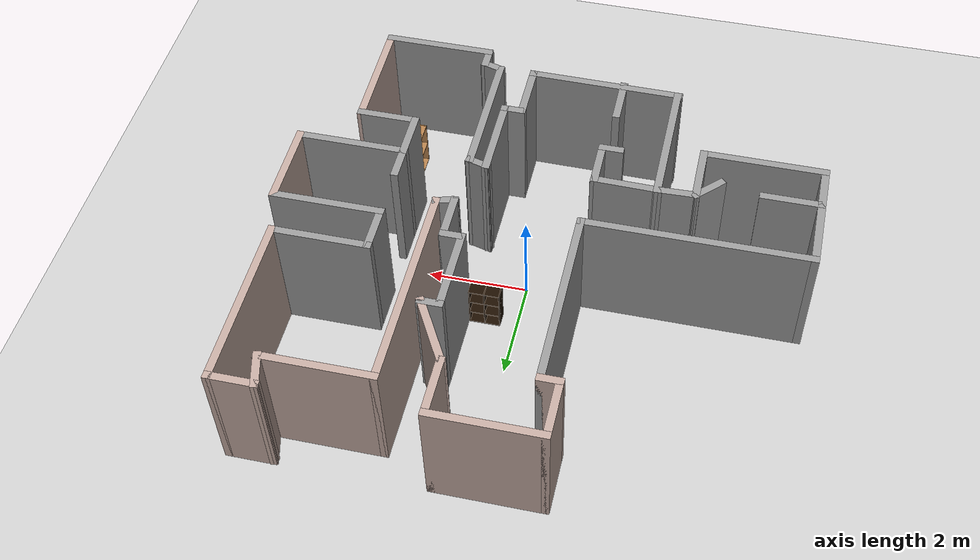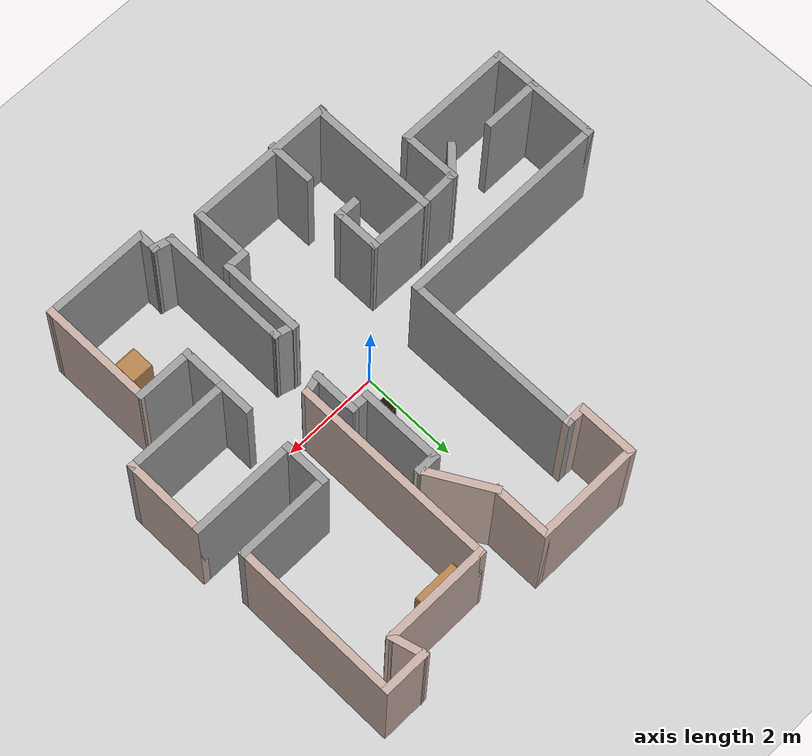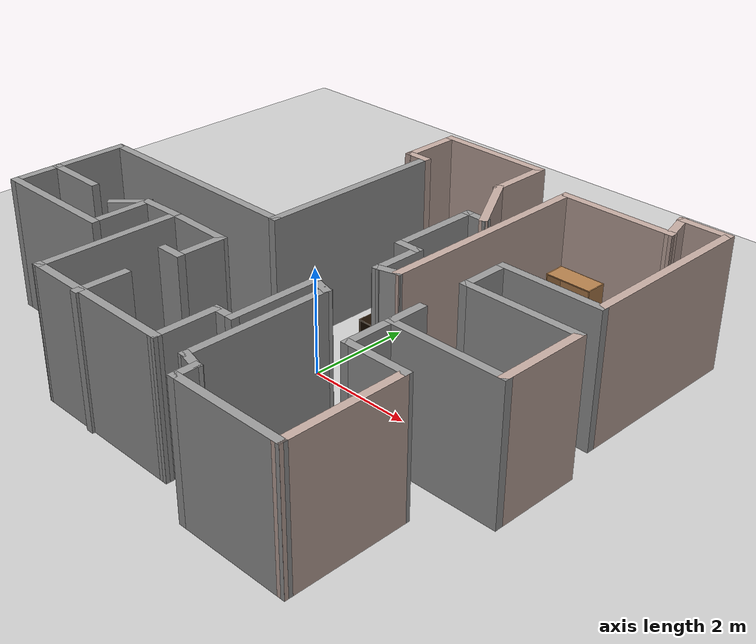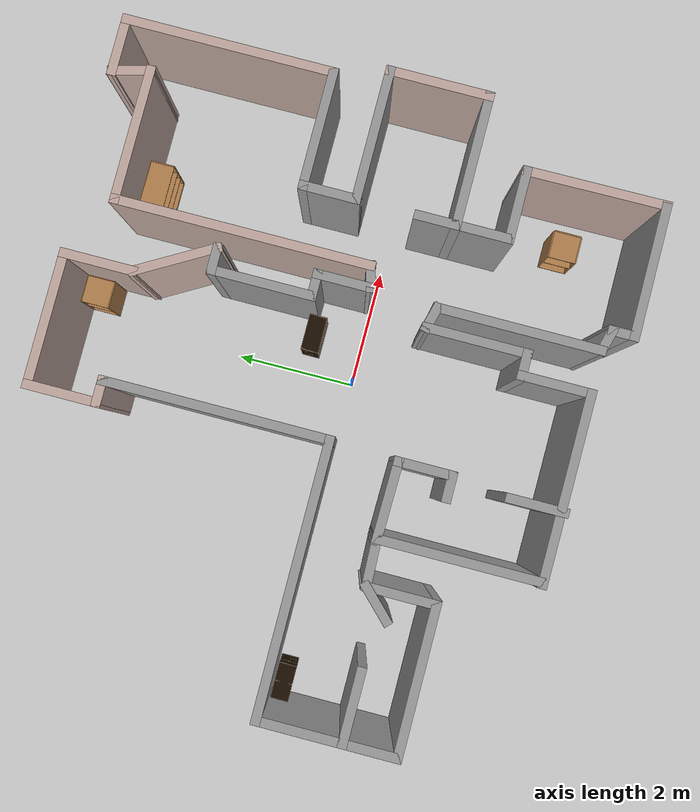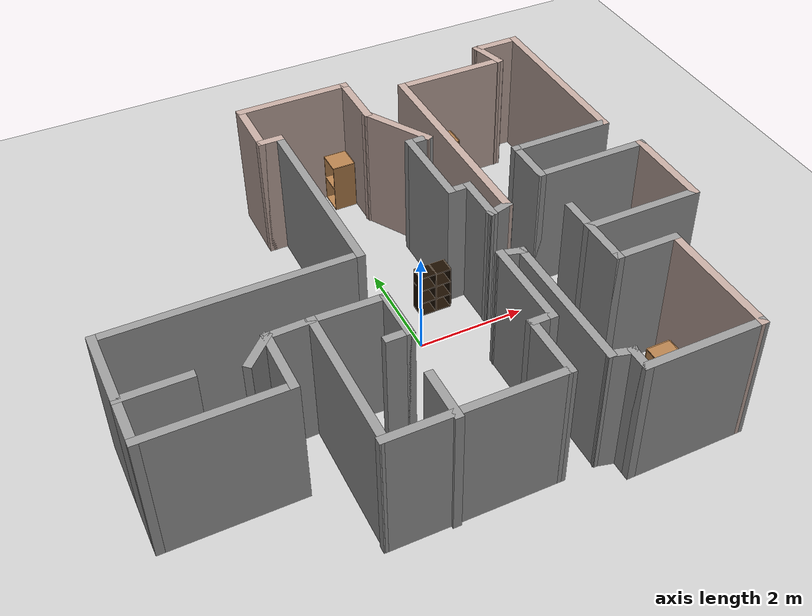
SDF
<sdf version="1.6">
 <world name="default">
  <light name="sun" type="directional">
   <pose>0 0 10 0 -0 0</pose>
   <diffuse>0.8 0.8 0.8 1</diffuse>
   <specular>0.2 0.2 0.2 1</specular>
   <attenuation>
    <range>1000</range>
    <constant>0.9</constant>
    <linear>0.01</linear>
    <quadratic>0.001</quadratic>
   </attenuation>
   <direction>-0.5 0.1 -0.9</direction>
  </light>
  <model name="ground_plane">
   <static>1</static>
   <link name="link">
    <collision name="collision">
     <geometry><plane><normal>0 0 1</normal><size>100 100</size></plane></geometry>
     <surface><friction><ode><mu>100</mu><mu2>50</mu2></ode></friction></surface>
    </collision>
    <visual name="visual">
     <cast_shadows>0</cast_shadows>
     <geometry><plane><normal>0 0 1</normal><size>100 100</size></plane></geometry>
     <material>
      <script><uri>file://media/materials/scripts/gazebo.material</uri><name>Gazebo/Grey</name></script>
     </material>
    </visual>
   </link>
  </model>
  <gravity>0 0 -9.8</gravity>
  <magnetic_field>6e-06 2.3e-05 -4.2e-05</magnetic_field>
  <atmosphere type="adiabatic"/>
  <physics name="default_physics" default="0" type="ode">
   <max_step_size>0.001</max_step_size>
   <real_time_factor>1</real_time_factor>
   <real_time_update_rate>1000</real_time_update_rate>
  </physics>
  <scene><ambient>0.4 0.4 0.4 1</ambient><background>0.7 0.7 0.7 1</background><shadows>1</shadows></scene>
  <spherical_coordinates>
   <surface_model>EARTH_WGS84</surface_model>
   <latitude_deg>0</latitude_deg>
   <longitude_deg>0</longitude_deg>
   <elevation>0</elevation>
   <heading_deg>0</heading_deg>
  </spherical_coordinates>
  <model name="map_16">
   <pose>-0.33146 0.40214 0 0 -0 0</pose>
   <link name="Wall_0">
    <collision name="Wall_0_Collision">
     <geometry><box><size>2.25 0.15 2.5</size></box></geometry>
     <pose>0 0 1.25 0 -0 0</pose>
    </collision>
    <visual name="Wall_0_Visual">
     <pose>0 0 1.25 0 -0 0</pose>
     <geometry><box><size>2.25 0.15 2.5</size></box></geometry>
     <material>
      <script><uri>file://media/materials/scripts/gazebo.material</uri><name>Gazebo/Grey</name></script>
      <ambient>0.180392 0.203922 0.211765 1</ambient>
     </material>
     <meta><layer>0</layer></meta>
    </visual>
    <pose>3.04726 -4.44921 0 0 -0 3.14159</pose>
   </link>
   <link name="Wall_1">
    <collision name="Wall_1_Collision">
     <geometry><box><size>0.5 0.15 2.5</size></box></geometry>
     <pose>0 0 1.25 0 -0 0</pose>
    </collision>
    <visual name="Wall_1_Visual">
     <pose>0 0 1.25 0 -0 0</pose>
     <geometry><box><size>0.5 0.15 2.5</size></box></geometry>
     <material>
      <script><uri>file://media/materials/scripts/gazebo.material</uri><name>Gazebo/Grey</name></script>
      <ambient>0.180392 0.203922 0.211765 1</ambient>
     </material>
     <meta><layer>0</layer></meta>
    </visual>
    <pose>1.99726 -4.27421 0 0 -0 1.5708</pose>
   </link>
   <link name="Wall_10">
    <collision name="Wall_10_Collision">
     <geometry><box><size>3.13887 0.15 2.5</size></box></geometry>
     <pose>0 0 1.25 0 -0 0</pose>
    </collision>
    <visual name="Wall_10_Visual">
     <pose>0 0 1.25 0 -0 0</pose>
     <geometry><box><size>3.13887 0.15 2.5</size></box></geometry>
     <material>
      <script><uri>file://media/materials/scripts/gazebo.material</uri><name>Gazebo/Grey</name></script>
      <ambient>0.180392 0.203922 0.211765 1</ambient>
     </material>
     <meta><layer>0</layer></meta>
    </visual>
    <pose>-0.523283 -4.00647 0 0 -0 3.13385</pose>
   </link>
   <link name="Wall_11">
    <collision name="Wall_11_Collision">
     <geometry><box><size>2.75 0.15 2.5</size></box></geometry>
     <pose>0 0 1.25 0 -0 0</pose>
    </collision>
    <visual name="Wall_11_Visual">
     <pose>0 0 1.25 0 -0 0</pose>
     <geometry><box><size>2.75 0.15 2.5</size></box></geometry>
     <material>
      <script><uri>file://media/materials/scripts/gazebo.material</uri><name>Gazebo/Grey</name></script>
      <ambient>0.180392 0.203922 0.211765 1</ambient>
     </material>
     <meta><layer>0</layer></meta>
    </visual>
    <pose>-1.99454 -2.69491 0 0 -0 1.5708</pose>
   </link>
   <link name="Wall_12">
    <collision name="Wall_12_Collision">
     <geometry><box><size>1.389 0.15 2.5</size></box></geometry>
     <pose>0 0 1.25 0 -0 0</pose>
    </collision>
    <visual name="Wall_12_Visual">
     <pose>0 0 1.25 0 -0 0</pose>
     <geometry><box><size>1.389 0.15 2.5</size></box></geometry>
     <material>
      <script><uri>file://media/materials/scripts/gazebo.material</uri><name>Gazebo/Grey</name></script>
      <ambient>0.180392 0.203922 0.211765 1</ambient>
     </material>
     <meta><layer>0</layer></meta>
    </visual>
    <pose>-1.39828 -1.40647 0 0 -0 -0.01867</pose>
   </link>
   <link name="Wall_13">
    <collision name="Wall_13_Collision">
     <geometry><box><size>1 0.15 2.5</size></box></geometry>
     <pose>0 0 1.25 0 -0 0</pose>
    </collision>
    <visual name="Wall_13_Visual">
     <pose>0 0 1.25 0 -0 0</pose>
     <geometry><box><size>1 0.15 2.5</size></box></geometry>
     <material>
      <script><uri>file://media/materials/scripts/gazebo.material</uri><name>Gazebo/Grey</name></script>
      <ambient>0.180392 0.203922 0.211765 1</ambient>
     </material>
     <meta><layer>0</layer></meta>
    </visual>
    <pose>-0.778891 -1.84304 0 0 -0 -1.5708</pose>
   </link>
   <link name="Wall_14">
    <collision name="Wall_14_Collision">
     <geometry><box><size>0.5 0.15 2.5</size></box></geometry>
     <pose>0 0 1.25 0 -0 0</pose>
    </collision>
    <visual name="Wall_14_Visual">
     <pose>0 0 1.25 0 -0 0</pose>
     <geometry><box><size>0.5 0.15 2.5</size></box></geometry>
     <material>
      <script><uri>file://media/materials/scripts/gazebo.material</uri><name>Gazebo/Grey</name></script>
      <ambient>0.180392 0.203922 0.211765 1</ambient>
     </material>
     <meta><layer>0</layer></meta>
    </visual>
    <pose>-0.953891 -2.26804 0 0 -0 3.14159</pose>
   </link>
   <link name="Wall_16">
    <collision name="Wall_16_Collision">
     <geometry><box><size>1 0.15 2.5</size></box></geometry>
     <pose>0 0 1.25 0 -0 0</pose>
    </collision>
    <visual name="Wall_16_Visual">
     <pose>0 0 1.25 0 -0 0</pose>
     <geometry><box><size>1 0.15 2.5</size></box></geometry>
     <material>
      <script><uri>file://media/materials/scripts/gazebo.material</uri><name>Gazebo/Grey</name></script>
      <ambient>0.180392 0.203922 0.211765 1</ambient>
     </material>
     <meta><layer>0</layer></meta>
    </visual>
    <pose>-0.888867 -3.62729 0 0 -0 -1.5708</pose>
   </link>
   <link name="Wall_18">
    <collision name="Wall_18_Collision">
     <geometry><box><size>0.861592 0.15 2.5</size></box></geometry>
     <pose>0 0 1.25 0 -0 0</pose>
    </collision>
    <visual name="Wall_18_Visual">
     <pose>0 0 1.25 0 -0 0</pose>
     <geometry><box><size>0.861592 0.15 2.5</size></box></geometry>
     <material>
      <script><uri>file://media/materials/scripts/gazebo.material</uri><name>Gazebo/Grey</name></script>
      <ambient>0.180392 0.203922 0.211765 1</ambient>
     </material>
     <meta><layer>0</layer></meta>
    </visual>
    <pose>-2.37328 -1.40647 0 0 -0 -3.10908</pose>
   </link>
   <link name="Wall_19">
    <collision name="Wall_19_Collision">
     <geometry><box><size>1.25 0.15 2.5</size></box></geometry>
     <pose>0 0 1.25 0 -0 0</pose>
    </collision>
    <visual name="Wall_19_Visual">
     <pose>0 0 1.25 0 -0 0</pose>
     <geometry><box><size>1.25 0.15 2.5</size></box></geometry>
     <material>
      <script><uri>file://media/materials/scripts/gazebo.material</uri><name>Gazebo/Grey</name></script>
      <ambient>0.180392 0.203922 0.211765 1</ambient>
     </material>
     <meta><layer>0</layer></meta>
    </visual>
    <pose>-2.72889 -1.96804 0 0 -0 -1.5708</pose>
   </link>
   <link name="Wall_2">
    <collision name="Wall_2_Collision">
     <geometry><box><size>0.5 0.15 2.5</size></box></geometry>
     <pose>0 0 1.25 0 -0 0</pose>
    </collision>
    <visual name="Wall_2_Visual">
     <pose>0 0 1.25 0 -0 0</pose>
     <geometry><box><size>0.5 0.15 2.5</size></box></geometry>
     <material>
      <script><uri>file://media/materials/scripts/gazebo.material</uri><name>Gazebo/Grey</name></script>
      <ambient>0.180392 0.203922 0.211765 1</ambient>
     </material>
     <meta><layer>0</layer></meta>
    </visual>
    <pose>1.82822 -4.05392 0 0 -0 2.87979</pose>
   </link>
   <link name="Wall_20">
    <collision name="Wall_20_Collision">
     <geometry><box><size>2.5 0.15 2.5</size></box></geometry>
     <pose>0 0 1.25 0 -0 0</pose>
    </collision>
    <visual name="Wall_20_Visual">
     <pose>0 0 1.25 0 -0 0</pose>
     <geometry><box><size>2.5 0.15 2.5</size></box></geometry>
     <material>
      <script><uri>file://media/materials/scripts/gazebo.material</uri><name>Gazebo/Grey</name></script>
      <ambient>0.180392 0.203922 0.211765 1</ambient>
     </material>
     <meta><layer>0</layer></meta>
    </visual>
    <pose>-3.90389 -2.51804 0 0 -0 3.14159</pose>
   </link>
   <link name="Wall_21">
    <collision name="Wall_21_Collision">
     <geometry><box><size>1 0.15 2.5</size></box></geometry>
     <pose>0 0 1.25 0 -0 0</pose>
    </collision>
    <visual name="Wall_21_Visual">
     <pose>0 0 1.25 0 -0 0</pose>
     <geometry><box><size>1 0.15 2.5</size></box></geometry>
     <material>
      <script><uri>file://media/materials/scripts/gazebo.material</uri><name>Gazebo/Grey</name></script>
      <ambient>0.180392 0.203922 0.211765 1</ambient>
     </material>
     <meta><layer>0</layer></meta>
    </visual>
    <pose>-5.07889 -2.09304 0 0 -0 1.5708</pose>
   </link>
   <link name="Wall_22">
    <collision name="Wall_22_Collision">
     <geometry><box><size>1.25 0.15 2.5</size></box></geometry>
     <pose>0 0 1.25 0 -0 0</pose>
    </collision>
    <visual name="Wall_22_Visual">
     <pose>0 0 1.25 0 -0 0</pose>
     <geometry><box><size>1.25 0.15 2.5</size></box></geometry>
     <material>
      <script><uri>file://media/materials/scripts/gazebo.material</uri><name>Gazebo/Grey</name></script>
      <ambient>0.180392 0.203922 0.211765 1</ambient>
     </material>
     <meta><layer>0</layer></meta>
    </visual>
    <pose>-4.52889 -1.66804 0 0 -0 0</pose>
   </link>
   <link name="Wall_24">
    <collision name="Wall_24_Collision">
     <geometry><box><size>0.75 0.15 2.5</size></box></geometry>
     <pose>0 0 1.25 0 -0 0</pose>
    </collision>
    <visual name="Wall_24_Visual">
     <pose>0 0 1.25 0 -0 0</pose>
     <geometry><box><size>0.75 0.15 2.5</size></box></geometry>
     <material>
      <script><uri>file://media/materials/scripts/gazebo.material</uri><name>Gazebo/Grey</name></script>
      <ambient>0.180392 0.203922 0.211765 1</ambient>
     </material>
     <meta><layer>0</layer></meta>
    </visual>
    <pose>-2.94102 -1.63017 0 0 -0 -2.35619</pose>
   </link>
   <link name="Wall_26">
    <collision name="Wall_26_Collision">
     <geometry><box><size>1.5 0.15 2.5</size></box></geometry>
     <pose>0 0 1.25 0 -0 0</pose>
    </collision>
    <visual name="Wall_26_Visual">
     <pose>0 0 1.25 0 -0 0</pose>
     <geometry><box><size>1.5 0.15 2.5</size></box></geometry>
     <material>
      <script><uri>file://media/materials/scripts/gazebo.material</uri><name>Gazebo/Grey</name></script>
      <ambient>0.180392 0.203922 0.211765 1</ambient>
     </material>
     <meta><layer>0</layer></meta>
    </visual>
    <pose>-5.07889 -0.993038 0 0 -0 1.5708</pose>
   </link>
   <link name="Wall_27">
    <collision name="Wall_27_Collision">
     <geometry><box><size>4.5 0.15 2.5</size></box></geometry>
     <pose>0 0 1.25 0 -0 0</pose>
    </collision>
    <visual name="Wall_27_Visual">
     <pose>0 0 1.25 0 -0 0</pose>
     <geometry><box><size>4.5 0.15 2.5</size></box></geometry>
     <material>
      <script><uri>file://media/materials/scripts/gazebo.material</uri><name>Gazebo/Grey</name></script>
      <ambient>0.180392 0.203922 0.211765 1</ambient>
     </material>
     <meta><layer>0</layer></meta>
    </visual>
    <pose>-2.90389 -0.318038 0 0 -0 0</pose>
   </link>
   <link name="Wall_28">
    <collision name="Wall_28_Collision">
     <geometry><box><size>3.75 0.15 2.5</size></box></geometry>
     <pose>0 0 1.25 0 -0 0</pose>
    </collision>
    <visual name="Wall_28_Visual">
     <pose>0 0 1.25 0 -0 0</pose>
     <geometry><box><size>3.75 0.15 2.5</size></box></geometry>
     <material>
      <script><uri>file://media/materials/scripts/gazebo.material</uri><name>Gazebo/Grey</name></script>
      <ambient>0.180392 0.203922 0.211765 1</ambient>
     </material>
     <meta><layer>0</layer></meta>
    </visual>
    <pose>-0.728891 1.48196 0 0 -0 1.5708</pose>
   </link>
   <link name="Wall_29">
    <collision name="Wall_29_Collision">
     <geometry><box><size>0.5 0.15 2.5</size></box></geometry>
     <pose>0 0 1.25 0 -0 0</pose>
    </collision>
    <visual name="Wall_29_Visual">
     <pose>0 0 1.25 0 -0 0</pose>
     <geometry><box><size>0.5 0.15 2.5</size></box></geometry>
     <material>
      <script><uri>file://media/materials/scripts/gazebo.material</uri><name>Gazebo/Grey</name></script>
      <ambient>0.760784 0.662745 0.627451 1</ambient>
     </material>
     <meta><layer>0</layer></meta>
    </visual>
    <pose>-0.903891 3.28196 0 0 -0 3.14159</pose>
   </link>
   <link name="Wall_3">
    <collision name="Wall_3_Collision">
     <geometry><box><size>2.75 0.15 2.5</size></box></geometry>
     <pose>0 0 1.25 0 -0 0</pose>
    </collision>
    <visual name="Wall_3_Visual">
     <pose>0 0 1.25 0 -0 0</pose>
     <geometry><box><size>2.75 0.15 2.5</size></box></geometry>
     <material>
      <script><uri>file://media/materials/scripts/gazebo.material</uri><name>Gazebo/Grey</name></script>
      <ambient>0.180392 0.203922 0.211765 1</ambient>
     </material>
     <meta><layer>0</layer></meta>
    </visual>
    <pose>1.65918 -2.70863 0 0 -0 1.5708</pose>
   </link>
   <link name="Wall_30">
    <collision name="Wall_30_Collision">
     <geometry><box><size>1.25 0.15 2.5</size></box></geometry>
     <pose>0 0 1.25 0 -0 0</pose>
    </collision>
    <visual name="Wall_30_Visual">
     <pose>0 0 1.25 0 -0 0</pose>
     <geometry><box><size>1.25 0.15 2.5</size></box></geometry>
     <material>
      <script><uri>file://media/materials/scripts/gazebo.material</uri><name>Gazebo/Grey</name></script>
      <ambient>0.760784 0.662745 0.627451 1</ambient>
     </material>
     <meta><layer>0</layer></meta>
    </visual>
    <pose>-1.07889 3.83196 0 0 -0 1.5708</pose>
   </link>
   <link name="Wall_31">
    <collision name="Wall_31_Collision">
     <geometry><box><size>2.25 0.15 2.5</size></box></geometry>
     <pose>0 0 1.25 0 -0 0</pose>
    </collision>
    <visual name="Wall_31_Visual">
     <pose>0 0 1.25 0 -0 0</pose>
     <geometry><box><size>2.25 0.15 2.5</size></box></geometry>
     <material>
      <script><uri>file://media/materials/scripts/gazebo.material</uri><name>Gazebo/Grey</name></script>
      <ambient>0.760784 0.662745 0.627451 1</ambient>
     </material>
     <meta><layer>0</layer></meta>
    </visual>
    <pose>-0.028891 4.38196 0 0 -0 0</pose>
   </link>
   <link name="Wall_32">
    <collision name="Wall_32_Collision">
     <geometry><box><size>1.25 0.15 2.5</size></box></geometry>
     <pose>0 0 1.25 0 -0 0</pose>
    </collision>
    <visual name="Wall_32_Visual">
     <pose>0 0 1.25 0 -0 0</pose>
     <geometry><box><size>1.25 0.15 2.5</size></box></geometry>
     <material>
      <script><uri>file://media/materials/scripts/gazebo.material</uri><name>Gazebo/Grey</name></script>
      <ambient>0.760784 0.662745 0.627451 1</ambient>
     </material>
     <meta><layer>0</layer></meta>
    </visual>
    <pose>1.02111 3.83196 0 0 -0 -1.5708</pose>
   </link>
   <link name="Wall_33">
    <collision name="Wall_33_Collision">
     <geometry><box><size>1.5 0.15 2.5</size></box></geometry>
     <pose>0 0 1.25 0 -0 0</pose>
    </collision>
    <visual name="Wall_33_Visual">
     <pose>0 0 1.25 0 -0 0</pose>
     <geometry><box><size>1.5 0.15 2.5</size></box></geometry>
     <material>
      <script><uri>file://media/materials/scripts/gazebo.material</uri><name>Gazebo/Grey</name></script>
      <ambient>0.760784 0.662745 0.627451 1</ambient>
     </material>
     <meta><layer>0</layer></meta>
    </visual>
    <pose>1.35861 2.6974 0 0 -0 -1.0472</pose>
   </link>
   <link name="Wall_34">
    <collision name="Wall_34_Collision">
     <geometry><box><size>0.5 0.15 2.5</size></box></geometry>
     <pose>0 0 1.25 0 -0 0</pose>
    </collision>
    <visual name="Wall_34_Visual">
     <pose>0 0 1.25 0 -0 0</pose>
     <geometry><box><size>0.5 0.15 2.5</size></box></geometry>
     <material>
      <script><uri>file://media/materials/scripts/gazebo.material</uri><name>Gazebo/Grey</name></script>
      <ambient>1 1 1 1</ambient>
     </material>
     <meta><layer>0</layer></meta>
    </visual>
    <pose>1.52111 2.11283 0 0 -0 3.14159</pose>
   </link>
   <link name="Wall_35">
    <collision name="Wall_35_Collision">
     <geometry><box><size>1.75 0.15 2.5</size></box></geometry>
     <pose>0 0 1.25 0 -0 0</pose>
    </collision>
    <visual name="Wall_35_Visual">
     <pose>0 0 1.25 0 -0 0</pose>
     <geometry><box><size>1.75 0.15 2.5</size></box></geometry>
     <material>
      <script><uri>file://media/materials/scripts/gazebo.material</uri><name>Gazebo/Grey</name></script>
      <ambient>0.180392 0.203922 0.211765 1</ambient>
     </material>
     <meta><layer>0</layer></meta>
    </visual>
    <pose>1.34611 1.31283 0 0 -0 -1.5708</pose>
   </link>
   <link name="Wall_36">
    <collision name="Wall_36_Collision">
     <geometry><box><size>0.5 0.15 2.5</size></box></geometry>
     <pose>0 0 1.25 0 -0 0</pose>
    </collision>
    <visual name="Wall_36_Visual">
     <pose>0 0 1.25 0 -0 0</pose>
     <geometry><box><size>0.5 0.15 2.5</size></box></geometry>
     <material>
      <script><uri>file://media/materials/scripts/gazebo.material</uri><name>Gazebo/Grey</name></script>
      <ambient>0.180392 0.203922 0.211765 1</ambient>
     </material>
     <meta><layer>0</layer></meta>
    </visual>
    <pose>1.52111 0.512828 0 0 -0 0</pose>
   </link>
   <link name="Wall_37">
    <collision name="Wall_37_Collision">
     <geometry><box><size>1 0.15 2.5</size></box></geometry>
     <pose>0 0 1.25 0 -0 0</pose>
    </collision>
    <visual name="Wall_37_Visual">
     <pose>0 0 1.25 0 -0 0</pose>
     <geometry><box><size>1 0.15 2.5</size></box></geometry>
     <material>
      <script><uri>file://media/materials/scripts/gazebo.material</uri><name>Gazebo/Grey</name></script>
      <ambient>0.180392 0.203922 0.211765 1</ambient>
     </material>
     <meta><layer>0</layer></meta>
    </visual>
    <pose>1.69611 0.087828 0 0 -0 -1.5708</pose>
   </link>
   <link name="Wall_38">
    <collision name="Wall_38_Collision">
     <geometry><box><size>0.5 0.15 2.5</size></box></geometry>
     <pose>0 0 1.25 0 -0 0</pose>
    </collision>
    <visual name="Wall_38_Visual">
     <pose>0 0 1.25 0 -0 0</pose>
     <geometry><box><size>0.5 0.15 2.5</size></box></geometry>
     <material>
      <script><uri>file://media/materials/scripts/gazebo.material</uri><name>Gazebo/Grey</name></script>
      <ambient>0.180392 0.203922 0.211765 1</ambient>
     </material>
     <meta><layer>0</layer></meta>
    </visual>
    <pose>1.86515 -0.291879 0 0 -0 0.261799</pose>
   </link>
   <link name="Wall_39">
    <collision name="Wall_39_Collision">
     <geometry><box><size>4.25 0.15 2.5</size></box></geometry>
     <pose>0 0 1.25 0 -0 0</pose>
    </collision>
    <visual name="Wall_39_Visual">
     <pose>0 0 1.25 0 -0 0</pose>
     <geometry><box><size>4.25 0.15 2.5</size></box></geometry>
     <material>
      <script><uri>file://media/materials/scripts/gazebo.material</uri><name>Gazebo/Grey</name></script>
      <ambient>0.760784 0.662745 0.627451 1</ambient>
     </material>
     <meta><layer>0</layer></meta>
    </visual>
    <pose>2.03418 1.80341 0 0 -0 1.5708</pose>
   </link>
   <link name="Wall_4">
    <collision name="Wall_4_Collision">
     <geometry><box><size>0.5 0.15 2.5</size></box></geometry>
     <pose>0 0 1.25 0 -0 0</pose>
    </collision>
    <visual name="Wall_4_Visual">
     <pose>0 0 1.25 0 -0 0</pose>
     <geometry><box><size>0.5 0.15 2.5</size></box></geometry>
     <material>
      <script><uri>file://media/materials/scripts/gazebo.material</uri><name>Gazebo/Grey</name></script>
      <ambient>0.180392 0.203922 0.211765 1</ambient>
     </material>
     <meta><layer>0</layer></meta>
    </visual>
    <pose>1.49015 -1.36333 0 0 -0 2.87979</pose>
   </link>
   <link name="Wall_40">
    <collision name="Wall_40_Collision">
     <geometry><box><size>2.25 0.15 2.5</size></box></geometry>
     <pose>0 0 1.25 0 -0 0</pose>
    </collision>
    <visual name="Wall_40_Visual">
     <pose>0 0 1.25 0 -0 0</pose>
     <geometry><box><size>2.25 0.15 2.5</size></box></geometry>
     <material>
      <script><uri>file://media/materials/scripts/gazebo.material</uri><name>Gazebo/Grey</name></script>
      <ambient>0.760784 0.662745 0.627451 1</ambient>
     </material>
     <meta><layer>0</layer></meta>
    </visual>
    <pose>3.08418 3.85341 0 0 -0 0</pose>
   </link>
   <link name="Wall_41">
    <collision name="Wall_41_Collision">
     <geometry><box><size>0.75 0.15 2.5</size></box></geometry>
     <pose>0 0 1.25 0 -0 0</pose>
    </collision>
    <visual name="Wall_41_Visual">
     <pose>0 0 1.25 0 -0 0</pose>
     <geometry><box><size>0.75 0.15 2.5</size></box></geometry>
     <material>
      <script><uri>file://media/materials/scripts/gazebo.material</uri><name>Gazebo/Grey</name></script>
      <ambient>0.760784 0.662745 0.627451 1</ambient>
     </material>
     <meta><layer>0</layer></meta>
    </visual>
    <pose>4.05654 4.14319 0 0 -0 1.8326</pose>
   </link>
   <link name="Wall_42">
    <collision name="Wall_42_Collision">
     <geometry><box><size>1 0.15 2.5</size></box></geometry>
     <pose>0 0 1.25 0 -0 0</pose>
    </collision>
    <visual name="Wall_42_Visual">
     <pose>0 0 1.25 0 -0 0</pose>
     <geometry><box><size>1 0.15 2.5</size></box></geometry>
     <material>
      <script><uri>file://media/materials/scripts/gazebo.material</uri><name>Gazebo/Grey</name></script>
      <ambient>0.760784 0.662745 0.627451 1</ambient>
     </material>
     <meta><layer>0</layer></meta>
    </visual>
    <pose>4.40389 4.43297 0 0 -0 0</pose>
   </link>
   <link name="Wall_43">
    <collision name="Wall_43_Collision">
     <geometry><box><size>3.5 0.15 2.5</size></box></geometry>
     <pose>0 0 1.25 0 -0 0</pose>
    </collision>
    <visual name="Wall_43_Visual">
     <pose>0 0 1.25 0 -0 0</pose>
     <geometry><box><size>3.5 0.15 2.5</size></box></geometry>
     <material>
      <script><uri>file://media/materials/scripts/gazebo.material</uri><name>Gazebo/Grey</name></script>
      <ambient>0.760784 0.662745 0.627451 1</ambient>
     </material>
     <meta><layer>0</layer></meta>
    </visual>
    <pose>4.82889 2.75797 0 0 -0 -1.5708</pose>
   </link>
   <link name="Wall_44">
    <collision name="Wall_44_Collision">
     <geometry><box><size>2 0.15 2.5</size></box></geometry>
     <pose>0 0 1.25 0 -0 0</pose>
    </collision>
    <visual name="Wall_44_Visual">
     <pose>0 0 1.25 0 -0 0</pose>
     <geometry><box><size>2 0.15 2.5</size></box></geometry>
     <material>
      <script><uri>file://media/materials/scripts/gazebo.material</uri><name>Gazebo/Grey</name></script>
      <ambient>0.180392 0.203922 0.211765 1</ambient>
     </material>
     <meta><layer>0</layer></meta>
    </visual>
    <pose>3.90389 1.08297 0 0 -0 3.14159</pose>
   </link>
   <link name="Wall_45">
    <collision name="Wall_45_Collision">
     <geometry><box><size>1 0.15 2.5</size></box></geometry>
     <pose>0 0 1.25 0 -0 0</pose>
    </collision>
    <visual name="Wall_45_Visual">
     <pose>0 0 1.25 0 -0 0</pose>
     <geometry><box><size>1 0.15 2.5</size></box></geometry>
     <material>
      <script><uri>file://media/materials/scripts/gazebo.material</uri><name>Gazebo/Grey</name></script>
      <ambient>0.180392 0.203922 0.211765 1</ambient>
     </material>
     <meta><layer>0</layer></meta>
    </visual>
    <pose>2.97889 0.65797 0 0 -0 -1.5708</pose>
   </link>
   <link name="Wall_46">
    <collision name="Wall_46_Collision">
     <geometry><box><size>2.25 0.15 2.5</size></box></geometry>
     <pose>0 0 1.25 0 -0 0</pose>
    </collision>
    <visual name="Wall_46_Visual">
     <pose>0 0 1.25 0 -0 0</pose>
     <geometry><box><size>2.25 0.15 2.5</size></box></geometry>
     <material>
      <script><uri>file://media/materials/scripts/gazebo.material</uri><name>Gazebo/Grey</name></script>
      <ambient>0.180392 0.203922 0.211765 1</ambient>
     </material>
     <meta><layer>0</layer></meta>
    </visual>
    <pose>4.02889 0.23297 0 0 -0 0</pose>
   </link>
   <link name="Wall_47">
    <collision name="Wall_47_Collision">
     <geometry><box><size>1.75 0.15 2.5</size></box></geometry>
     <pose>0 0 1.25 0 -0 0</pose>
    </collision>
    <visual name="Wall_47_Visual">
     <pose>0 0 1.25 0 -0 0</pose>
     <geometry><box><size>1.75 0.15 2.5</size></box></geometry>
     <material>
      <script><uri>file://media/materials/scripts/gazebo.material</uri><name>Gazebo/Grey</name></script>
      <ambient>0.760784 0.662745 0.627451 1</ambient>
     </material>
     <meta><layer>0</layer></meta>
    </visual>
    <pose>5.07889 -0.56703 0 0 -0 -1.5708</pose>
   </link>
   <link name="Wall_48">
    <collision name="Wall_48_Collision">
     <geometry><box><size>2.25 0.15 2.5</size></box></geometry>
     <pose>0 0 1.25 0 -0 0</pose>
    </collision>
    <visual name="Wall_48_Visual">
     <pose>0 0 1.25 0 -0 0</pose>
     <geometry><box><size>2.25 0.15 2.5</size></box></geometry>
     <material>
      <script><uri>file://media/materials/scripts/gazebo.material</uri><name>Gazebo/Grey</name></script>
      <ambient>0.180392 0.203922 0.211765 1</ambient>
     </material>
     <meta><layer>0</layer></meta>
    </visual>
    <pose>4.02889 -1.36703 0 0 -0 3.14159</pose>
   </link>
   <link name="Wall_49">
    <collision name="Wall_49_Collision">
     <geometry><box><size>0.75 0.15 2.5</size></box></geometry>
     <pose>0 0 1.25 0 -0 0</pose>
    </collision>
    <visual name="Wall_49_Visual">
     <pose>0 0 1.25 0 -0 0</pose>
     <geometry><box><size>0.75 0.15 2.5</size></box></geometry>
     <material>
      <script><uri>file://media/materials/scripts/gazebo.material</uri><name>Gazebo/Grey</name></script>
      <ambient>0.180392 0.203922 0.211765 1</ambient>
     </material>
     <meta><layer>0</layer></meta>
    </visual>
    <pose>2.97889 -1.06703 0 0 -0 1.5708</pose>
   </link>
   <link name="Wall_5">
    <collision name="Wall_5_Collision">
     <geometry><box><size>1.75 0.15 2.5</size></box></geometry>
     <pose>0 0 1.25 0 -0 0</pose>
    </collision>
    <visual name="Wall_5_Visual">
     <pose>0 0 1.25 0 -0 0</pose>
     <geometry><box><size>1.75 0.15 2.5</size></box></geometry>
     <material>
      <script><uri>file://media/materials/scripts/gazebo.material</uri><name>Gazebo/Grey</name></script>
      <ambient>0.180392 0.203922 0.211765 1</ambient>
     </material>
     <meta><layer>0</layer></meta>
    </visual>
    <pose>1.32111 -2.11804 0 0 -0 -1.5708</pose>
   </link>
   <link name="Wall_51">
    <collision name="Wall_51_Collision">
     <geometry><box><size>1 0.15 2.5</size></box></geometry>
     <pose>0 0 1.25 0 -0 0</pose>
    </collision>
    <visual name="Wall_51_Visual">
     <pose>0 0 1.25 0 -0 0</pose>
     <geometry><box><size>1 0.15 2.5</size></box></geometry>
     <material>
      <script><uri>file://media/materials/scripts/gazebo.material</uri><name>Gazebo/Grey</name></script>
      <ambient>0.180392 0.203922 0.211765 1</ambient>
     </material>
     <meta><layer>0</layer></meta>
    </visual>
    <pose>2.97889 -1.79203 0 0 -0 -1.5708</pose>
   </link>
   <link name="Wall_52">
    <collision name="Wall_52_Collision">
     <geometry><box><size>1.25 0.15 2.5</size></box></geometry>
     <pose>0 0 1.25 0 -0 0</pose>
    </collision>
    <visual name="Wall_52_Visual">
     <pose>0 0 1.25 0 -0 0</pose>
     <geometry><box><size>1.25 0.15 2.5</size></box></geometry>
     <material>
      <script><uri>file://media/materials/scripts/gazebo.material</uri><name>Gazebo/Grey</name></script>
      <ambient>0.180392 0.203922 0.211765 1</ambient>
     </material>
     <meta><layer>0</layer></meta>
    </visual>
    <pose>3.52889 -2.21703 0 0 -0 0</pose>
   </link>
   <link name="Wall_54">
    <collision name="Wall_54_Collision">
     <geometry><box><size>2.38226 0.15 2.5</size></box></geometry>
     <pose>0 0 1.25 0 -0 0</pose>
    </collision>
    <visual name="Wall_54_Visual">
     <pose>0 0 1.25 0 -0 0</pose>
     <geometry><box><size>2.38226 0.15 2.5</size></box></geometry>
     <material>
      <script><uri>file://media/materials/scripts/gazebo.material</uri><name>Gazebo/Grey</name></script>
      <ambient>0.760784 0.662745 0.627451 1</ambient>
     </material>
     <meta><layer>0</layer></meta>
    </visual>
    <pose>4.08807 -3.33312 0 0 -0 -1.56257</pose>
   </link>
   <link name="Wall_8">
    <collision name="Wall_8_Collision">
     <geometry><box><size>0.5 0.15 2.5</size></box></geometry>
     <pose>0 0 1.25 0 -0 0</pose>
    </collision>
    <visual name="Wall_8_Visual">
     <pose>0 0 1.25 0 -0 0</pose>
     <geometry><box><size>0.5 0.15 2.5</size></box></geometry>
     <material>
      <script><uri>file://media/materials/scripts/gazebo.material</uri><name>Gazebo/Grey</name></script>
      <ambient>0.180392 0.203922 0.211765 1</ambient>
     </material>
     <meta><layer>0</layer></meta>
    </visual>
    <pose>1.14611 -2.91804 0 0 -0 3.14159</pose>
   </link>
   <link name="Wall_9">
    <collision name="Wall_9_Collision">
     <geometry><box><size>1.25 0.15 2.5</size></box></geometry>
     <pose>0 0 1.25 0 -0 0</pose>
    </collision>
    <visual name="Wall_9_Visual">
     <pose>0 0 1.25 0 -0 0</pose>
     <geometry><box><size>1.25 0.15 2.5</size></box></geometry>
     <material>
      <script><uri>file://media/materials/scripts/gazebo.material</uri><name>Gazebo/Grey</name></script>
      <ambient>0.180392 0.203922 0.211765 1</ambient>
     </material>
     <meta><layer>0</layer></meta>
    </visual>
    <pose>0.971109 -3.46804 0 0 -0 -1.5708</pose>
   </link>
   <static>1</static>
  </model>
  <model name="6_Cube_StorageE">
   <link name="Wall_0">
    <pose>0 0 0.01 0 -0 0</pose>
    <inertial>
     <mass>1.6201</mass>
     <inertia><ixx>0.0119</ixx><iyy>0.0631</iyy><izz>0.0513</izz><ixy>0</ixy><ixz>0</ixz><iyz>0</iyz></inertia>
    </inertial>
    <collision name="Wall_0_Collision"><geometry><box><size>0.616 0.296 0.02</size></box></geometry></collision>
    <visual name="Wall_0_Visual">
     <geometry><box><size>0.616 0.296 0.02</size></box></geometry>
     <material>
      <script><uri>file://media/materials/scripts/gazebo.material</uri><name>Gazebo/Grey</name></script>
      <ambient>0.105882 0.0509804 0 1</ambient>
     </material>
    </visual>
   </link>
   <joint name="0_2" type="fixed">
    <pose>-0.308 0 0 0 -0 0</pose>
    <parent>Wall_2</parent>
    <child>Wall_0</child>
    <axis>
     <xyz>1 0 0</xyz>
     <use_parent_model_frame>0</use_parent_model_frame>
     <limit><lower>-1e+16</lower><upper>1e+16</upper></limit>
    </axis>
   </joint>
   <joint name="0_12" type="fixed">
    <parent>Wall_12</parent>
    <child>Wall_0</child>
    <axis>
     <xyz>0 0 1</xyz>
     <use_parent_model_frame>0</use_parent_model_frame>
     <limit><lower>-1e+16</lower><upper>1e+16</upper></limit>
    </axis>
   </joint>
   <joint name="0_4" type="fixed">
    <pose>0.308 0 0 0 -0 0</pose>
    <parent>Wall_4</parent>
    <child>Wall_0</child>
    <axis>
     <xyz>1 0 0</xyz>
     <use_parent_model_frame>0</use_parent_model_frame>
     <limit><lower>-1e+16</lower><upper>1e+16</upper></limit>
    </axis>
   </joint>
   <link name="Wall_10">
    <pose>0 0 0.61 0 -0 0</pose>
    <inertial>
     <mass>1.6201</mass>
     <inertia><ixx>0.0119</ixx><iyy>0.0631</iyy><izz>0.0513</izz><ixy>0</ixy><ixz>0</ixz><iyz>0</iyz></inertia>
    </inertial>
    <collision name="Wall_10_Collision"><geometry><box><size>0.616 0.296 0.02</size></box></geometry></collision>
    <visual name="Wall_10_Visual">
     <geometry><box><size>0.616 0.296 0.02</size></box></geometry>
     <material>
      <script><uri>file://media/materials/scripts/gazebo.material</uri><name>Gazebo/Grey</name></script>
      <ambient>0.105882 0.0509804 0 1</ambient>
     </material>
    </visual>
   </link>
   <joint name="10_2" type="fixed">
    <pose>-0.308 0 0 0 -0 0</pose>
    <parent>Wall_2</parent>
    <child>Wall_10</child>
    <axis>
     <xyz>1 0 0</xyz>
     <use_parent_model_frame>0</use_parent_model_frame>
     <limit><lower>-1e+16</lower><upper>1e+16</upper></limit>
    </axis>
   </joint>
   <joint name="10_12" type="fixed">
    <parent>Wall_12</parent>
    <child>Wall_10</child>
    <axis>
     <xyz>0 0 1</xyz>
     <use_parent_model_frame>0</use_parent_model_frame>
     <limit><lower>-1e+16</lower><upper>1e+16</upper></limit>
    </axis>
   </joint>
   <joint name="10_4" type="fixed">
    <pose>0.308 0 0 0 -0 0</pose>
    <parent>Wall_4</parent>
    <child>Wall_10</child>
    <axis>
     <xyz>1 0 0</xyz>
     <use_parent_model_frame>0</use_parent_model_frame>
     <limit><lower>-1e+16</lower><upper>1e+16</upper></limit>
    </axis>
   </joint>
   <link name="Wall_12">
    <pose>0 0 0.4575 0 -0 0</pose>
    <inertial>
     <mass>2.4065</mass>
     <inertia><ixx>0.0177</ixx><iyy>0.1855</iyy><izz>0.168</izz><ixy>0</ixy><ixz>0</ixz><iyz>0</iyz></inertia>
    </inertial>
    <collision name="Wall_12_Collision"><geometry><box><size>0.02 0.296 0.915</size></box></geometry></collision>
    <visual name="Wall_12_Visual">
     <geometry><box><size>0.02 0.296 0.915</size></box></geometry>
     <material>
      <script><uri>file://media/materials/scripts/gazebo.material</uri><name>Gazebo/Grey</name></script>
      <ambient>0.105882 0.0509804 0 1</ambient>
     </material>
    </visual>
   </link>
   <link name="Wall_2">
    <pose>-0.298 0 0.4575 0 -0 0</pose>
    <inertial>
     <mass>2.4065</mass>
     <inertia><ixx>0.0177</ixx><iyy>0.1855</iyy><izz>0.168</izz><ixy>0</ixy><ixz>0</ixz><iyz>0</iyz></inertia>
    </inertial>
    <collision name="Wall_2_Collision"><geometry><box><size>0.02 0.296 0.915</size></box></geometry></collision>
    <visual name="Wall_2_Visual">
     <geometry><box><size>0.02 0.296 0.915</size></box></geometry>
     <material>
      <script><uri>file://media/materials/scripts/gazebo.material</uri><name>Gazebo/Grey</name></script>
      <ambient>0.105882 0.0509804 0 1</ambient>
     </material>
    </visual>
   </link>
   <link name="Wall_4">
    <pose>0.298 0 0.4575 0 -0 0</pose>
    <inertial>
     <mass>2.4065</mass>
     <inertia><ixx>0.0177</ixx><iyy>0.1855</iyy><izz>0.168</izz><ixy>0</ixy><ixz>0</ixz><iyz>0</iyz></inertia>
    </inertial>
    <collision name="Wall_4_Collision"><geometry><box><size>0.02 0.296 0.915</size></box></geometry></collision>
    <visual name="Wall_4_Visual">
     <geometry><box><size>0.02 0.296 0.915</size></box></geometry>
     <material>
      <script><uri>file://media/materials/scripts/gazebo.material</uri><name>Gazebo/Grey</name></script>
      <ambient>0.105882 0.0509804 0 1</ambient>
     </material>
    </visual>
   </link>
   <link name="Wall_6">
    <pose>0 0 0.905 0 -0 0</pose>
    <inertial>
     <mass>1.6201</mass>
     <inertia><ixx>0.0119</ixx><iyy>0.0631</iyy><izz>0.0513</izz><ixy>0</ixy><ixz>0</ixz><iyz>0</iyz></inertia>
    </inertial>
    <collision name="Wall_6_Collision"><geometry><box><size>0.616 0.296 0.02</size></box></geometry></collision>
    <visual name="Wall_6_Visual">
     <geometry><box><size>0.616 0.296 0.02</size></box></geometry>
     <material>
      <script><uri>file://media/materials/scripts/gazebo.material</uri><name>Gazebo/Grey</name></script>
      <ambient>0.105882 0.0509804 0 1</ambient>
     </material>
    </visual>
   </link>
   <joint name="6_2" type="fixed">
    <pose>-0.308 0 0 0 -0 0</pose>
    <parent>Wall_2</parent>
    <child>Wall_6</child>
    <axis>
     <xyz>2 0 0</xyz>
     <use_parent_model_frame>0</use_parent_model_frame>
     <limit><lower>-1e+16</lower><upper>1e+16</upper></limit>
    </axis>
   </joint>
   <joint name="6_12" type="fixed">
    <parent>Wall_12</parent>
    <child>Wall_6</child>
    <axis>
     <xyz>0 0 1</xyz>
     <use_parent_model_frame>0</use_parent_model_frame>
     <limit><lower>-1e+16</lower><upper>1e+16</upper></limit>
    </axis>
   </joint>
   <joint name="6_4" type="fixed">
    <pose>0.308 0 0 0 -0 0</pose>
    <parent>Wall_4</parent>
    <child>Wall_6</child>
    <axis>
     <xyz>1 0 0</xyz>
     <use_parent_model_frame>0</use_parent_model_frame>
     <limit><lower>-1e+16</lower><upper>1e+16</upper></limit>
    </axis>
   </joint>
   <link name="Wall_8">
    <pose>0 0 0.305 0 -0 0</pose>
    <inertial>
     <mass>1.6201</mass>
     <inertia><ixx>0.0119</ixx><iyy>0.0631</iyy><izz>0.0513</izz><ixy>0</ixy><ixz>0</ixz><iyz>0</iyz></inertia>
    </inertial>
    <collision name="Wall_8_Collision"><geometry><box><size>0.616 0.296 0.02</size></box></geometry></collision>
    <visual name="Wall_8_Visual">
     <geometry><box><size>0.616 0.296 0.02</size></box></geometry>
     <material>
      <script><uri>file://media/materials/scripts/gazebo.material</uri><name>Gazebo/Grey</name></script>
      <ambient>0.105882 0.0509804 0 1</ambient>
     </material>
    </visual>
   </link>
   <joint name="8_2" type="fixed">
    <pose>-0.308 0 0 0 -0 0</pose>
    <parent>Wall_2</parent>
    <child>Wall_8</child>
    <axis>
     <xyz>1 0 0</xyz>
     <use_parent_model_frame>0</use_parent_model_frame>
     <limit><lower>-1e+16</lower><upper>1e+16</upper></limit>
    </axis>
   </joint>
   <joint name="8_12" type="fixed">
    <parent>Wall_12</parent>
    <child>Wall_8</child>
    <axis>
     <xyz>0 0 1</xyz>
     <use_parent_model_frame>0</use_parent_model_frame>
     <limit><lower>-1e+16</lower><upper>1e+16</upper></limit>
    </axis>
   </joint>
   <joint name="8_4" type="fixed">
    <pose>0.308 0 0 0 -0 0</pose>
    <parent>Wall_4</parent>
    <child>Wall_8</child>
    <axis>
     <xyz>1 0 0</xyz>
     <use_parent_model_frame>0</use_parent_model_frame>
     <limit><lower>-1e+16</lower><upper>1e+16</upper></limit>
    </axis>
   </joint>
   <static>1</static>
   <pose>0.627429 0.824489 0 0 -0 0</pose>
  </model>
  <model name="cabinet">
   <static>1</static>
   <link name="cabinet_bottom_plate">
    <inertial>
     <pose>0 0 -1 0 -0 0</pose>
     <inertia><ixx>2.05</ixx><ixy>0</ixy><ixz>0</ixz><iyy>2.05</iyy><iyz>0</iyz><izz>2.05</izz></inertia>
     <mass>25</mass>
    </inertial>
    <collision name="cabinet_bottom_plate_geom">
     <pose>0 0 0.01 0 -0 0</pose>
     <geometry><box><size>0.45 0.45 0.02</size></box></geometry>
    </collision>
    <visual name="cabinet_bottom_plate_geom_visual">
     <pose>0 0 0.01 0 -0 0</pose>
     <geometry><box><size>0.45 0.45 0.02</size></box></geometry>
     <material>
      <script><uri>file://media/materials/scripts/gazebo.material</uri><name>Gazebo/Wood</name></script>
     </material>
    </visual>
    <collision name="cabinet_bottom_plate_geom_cabinet_back_plate">
     <pose>0.235 0 0.51 0 -0 0</pose>
     <geometry><box><size>0.02 0.45 1.02</size></box></geometry>
    </collision>
    <visual name="cabinet_bottom_plate_geom_cabinet_back_plate_visual">
     <pose>0.235 0 0.51 0 -0 0</pose>
     <geometry><box><size>0.02 0.45 1.02</size></box></geometry>
     <material>
      <script><uri>file://media/materials/scripts/gazebo.material</uri><name>Gazebo/Wood</name></script>
     </material>
    </visual>
    <collision name="cabinet_bottom_plate_geom_cabinet_left_plate">
     <pose>0 0.235 0.51 0 -0 0</pose>
     <geometry><box><size>0.45 0.02 1.02</size></box></geometry>
    </collision>
    <visual name="cabinet_bottom_plate_geom_cabinet_left_plate_visual">
     <pose>0 0.235 0.51 0 -0 0</pose>
     <geometry><box><size>0.45 0.02 1.02</size></box></geometry>
     <material>
      <script><uri>file://media/materials/scripts/gazebo.material</uri><name>Gazebo/Wood</name></script>
     </material>
    </visual>
    <collision name="cabinet_bottom_plate_geom_cabinet_middle_plate">
     <pose>0 0 0.51 0 -0 0</pose>
     <geometry><box><size>0.45 0.45 0.02</size></box></geometry>
    </collision>
    <visual name="cabinet_bottom_plate_geom_cabinet_middle_plate_visual">
     <pose>0 0 0.51 0 -0 0</pose>
     <geometry><box><size>0.45 0.45 0.02</size></box></geometry>
     <material>
      <script><uri>file://media/materials/scripts/gazebo.material</uri><name>Gazebo/Wood</name></script>
     </material>
    </visual>
    <collision name="cabinet_bottom_plate_geom_cabinet_right_plate">
     <pose>0 -0.235 0.51 0 -0 0</pose>
     <geometry><box><size>0.45 0.02 1.02</size></box></geometry>
    </collision>
    <visual name="cabinet_bottom_plate_geom_cabinet_right_plate_visual">
     <pose>0 -0.235 0.51 0 -0 0</pose>
     <geometry><box><size>0.45 0.02 1.02</size></box></geometry>
     <material>
      <script><uri>file://media/materials/scripts/gazebo.material</uri><name>Gazebo/Wood</name></script>
     </material>
    </visual>
    <collision name="cabinet_bottom_plate_geom_cabinet_top_plate">
     <pose>0 0 1.01 0 -0 0</pose>
     <geometry><box><size>0.45 0.45 0.02</size></box></geometry>
    </collision>
    <visual name="cabinet_bottom_plate_geom_cabinet_top_plate_visual">
     <pose>0 0 1.01 0 -0 0</pose>
     <geometry><box><size>0.45 0.45 0.02</size></box></geometry>
     <material>
      <script><uri>file://media/materials/scripts/gazebo.material</uri><name>Gazebo/Wood</name></script>
     </material>
    </visual>
   </link>
   <pose>3.07156 -2.86481 0 0 -0 0</pose>
  </model>
  <model name="6_Cube_StorageE_0">
   <link name="Wall_0">
    <pose>0 0 0.01 0 -0 0</pose>
    <inertial>
     <mass>1.6201</mass>
     <inertia><ixx>0.0119</ixx><iyy>0.0631</iyy><izz>0.0513</izz><ixy>0</ixy><ixz>0</ixz><iyz>0</iyz></inertia>
    </inertial>
    <collision name="Wall_0_Collision"><geometry><box><size>0.616 0.296 0.02</size></box></geometry></collision>
    <visual name="Wall_0_Visual">
     <geometry><box><size>0.616 0.296 0.02</size></box></geometry>
     <material>
      <script><uri>file://media/materials/scripts/gazebo.material</uri><name>Gazebo/Grey</name></script>
      <ambient>0.105882 0.0509804 0 1</ambient>
     </material>
    </visual>
   </link>
   <joint name="0_2" type="fixed">
    <pose>-0.308 0 0 0 -0 0</pose>
    <parent>Wall_2</parent>
    <child>Wall_0</child>
    <axis>
     <xyz>1 0 0</xyz>
     <use_parent_model_frame>0</use_parent_model_frame>
     <limit><lower>-1e+16</lower><upper>1e+16</upper></limit>
    </axis>
   </joint>
   <joint name="0_12" type="fixed">
    <parent>Wall_12</parent>
    <child>Wall_0</child>
    <axis>
     <xyz>0 0 1</xyz>
     <use_parent_model_frame>0</use_parent_model_frame>
     <limit><lower>-1e+16</lower><upper>1e+16</upper></limit>
    </axis>
   </joint>
   <joint name="0_4" type="fixed">
    <pose>0.308 0 0 0 -0 0</pose>
    <parent>Wall_4</parent>
    <child>Wall_0</child>
    <axis>
     <xyz>1 0 0</xyz>
     <use_parent_model_frame>0</use_parent_model_frame>
     <limit><lower>-1e+16</lower><upper>1e+16</upper></limit>
    </axis>
   </joint>
   <link name="Wall_10">
    <pose>0 0 0.61 0 -0 0</pose>
    <inertial>
     <mass>1.6201</mass>
     <inertia><ixx>0.0119</ixx><iyy>0.0631</iyy><izz>0.0513</izz><ixy>0</ixy><ixz>0</ixz><iyz>0</iyz></inertia>
    </inertial>
    <collision name="Wall_10_Collision"><geometry><box><size>0.616 0.296 0.02</size></box></geometry></collision>
    <visual name="Wall_10_Visual">
     <geometry><box><size>0.616 0.296 0.02</size></box></geometry>
     <material>
      <script><uri>file://media/materials/scripts/gazebo.material</uri><name>Gazebo/Grey</name></script>
      <ambient>0.105882 0.0509804 0 1</ambient>
     </material>
    </visual>
   </link>
   <joint name="10_2" type="fixed">
    <pose>-0.308 0 0 0 -0 0</pose>
    <parent>Wall_2</parent>
    <child>Wall_10</child>
    <axis>
     <xyz>1 0 0</xyz>
     <use_parent_model_frame>0</use_parent_model_frame>
     <limit><lower>-1e+16</lower><upper>1e+16</upper></limit>
    </axis>
   </joint>
   <joint name="10_12" type="fixed">
    <parent>Wall_12</parent>
    <child>Wall_10</child>
    <axis>
     <xyz>0 0 1</xyz>
     <use_parent_model_frame>0</use_parent_model_frame>
     <limit><lower>-1e+16</lower><upper>1e+16</upper></limit>
    </axis>
   </joint>
   <joint name="10_4" type="fixed">
    <pose>0.308 0 0 0 -0 0</pose>
    <parent>Wall_4</parent>
    <child>Wall_10</child>
    <axis>
     <xyz>1 0 0</xyz>
     <use_parent_model_frame>0</use_parent_model_frame>
     <limit><lower>-1e+16</lower><upper>1e+16</upper></limit>
    </axis>
   </joint>
   <link name="Wall_12">
    <pose>0 0 0.4575 0 -0 0</pose>
    <inertial>
     <mass>2.4065</mass>
     <inertia><ixx>0.0177</ixx><iyy>0.1855</iyy><izz>0.168</izz><ixy>0</ixy><ixz>0</ixz><iyz>0</iyz></inertia>
    </inertial>
    <collision name="Wall_12_Collision"><geometry><box><size>0.02 0.296 0.915</size></box></geometry></collision>
    <visual name="Wall_12_Visual">
     <geometry><box><size>0.02 0.296 0.915</size></box></geometry>
     <material>
      <script><uri>file://media/materials/scripts/gazebo.material</uri><name>Gazebo/Grey</name></script>
      <ambient>0.105882 0.0509804 0 1</ambient>
     </material>
    </visual>
   </link>
   <link name="Wall_2">
    <pose>-0.298 0 0.4575 0 -0 0</pose>
    <inertial>
     <mass>2.4065</mass>
     <inertia><ixx>0.0177</ixx><iyy>0.1855</iyy><izz>0.168</izz><ixy>0</ixy><ixz>0</ixz><iyz>0</iyz></inertia>
    </inertial>
    <collision name="Wall_2_Collision"><geometry><box><size>0.02 0.296 0.915</size></box></geometry></collision>
    <visual name="Wall_2_Visual">
     <geometry><box><size>0.02 0.296 0.915</size></box></geometry>
     <material>
      <script><uri>file://media/materials/scripts/gazebo.material</uri><name>Gazebo/Grey</name></script>
      <ambient>0.105882 0.0509804 0 1</ambient>
     </material>
    </visual>
   </link>
   <link name="Wall_4">
    <pose>0.298 0 0.4575 0 -0 0</pose>
    <inertial>
     <mass>2.4065</mass>
     <inertia><ixx>0.0177</ixx><iyy>0.1855</iyy><izz>0.168</izz><ixy>0</ixy><ixz>0</ixz><iyz>0</iyz></inertia>
    </inertial>
    <collision name="Wall_4_Collision"><geometry><box><size>0.02 0.296 0.915</size></box></geometry></collision>
    <visual name="Wall_4_Visual">
     <geometry><box><size>0.02 0.296 0.915</size></box></geometry>
     <material>
      <script><uri>file://media/materials/scripts/gazebo.material</uri><name>Gazebo/Grey</name></script>
      <ambient>0.105882 0.0509804 0 1</ambient>
     </material>
    </visual>
   </link>
   <link name="Wall_6">
    <pose>0 0 0.905 0 -0 0</pose>
    <inertial>
     <mass>1.6201</mass>
     <inertia><ixx>0.0119</ixx><iyy>0.0631</iyy><izz>0.0513</izz><ixy>0</ixy><ixz>0</ixz><iyz>0</iyz></inertia>
    </inertial>
    <collision name="Wall_6_Collision"><geometry><box><size>0.616 0.296 0.02</size></box></geometry></collision>
    <visual name="Wall_6_Visual">
     <geometry><box><size>0.616 0.296 0.02</size></box></geometry>
     <material>
      <script><uri>file://media/materials/scripts/gazebo.material</uri><name>Gazebo/Grey</name></script>
      <ambient>0.105882 0.0509804 0 1</ambient>
     </material>
    </visual>
   </link>
   <joint name="6_2" type="fixed">
    <pose>-0.308 0 0 0 -0 0</pose>
    <parent>Wall_2</parent>
    <child>Wall_6</child>
    <axis>
     <xyz>2 0 0</xyz>
     <use_parent_model_frame>0</use_parent_model_frame>
     <limit><lower>-1e+16</lower><upper>1e+16</upper></limit>
    </axis>
   </joint>
   <joint name="6_12" type="fixed">
    <parent>Wall_12</parent>
    <child>Wall_6</child>
    <axis>
     <xyz>0 0 1</xyz>
     <use_parent_model_frame>0</use_parent_model_frame>
     <limit><lower>-1e+16</lower><upper>1e+16</upper></limit>
    </axis>
   </joint>
   <joint name="6_4" type="fixed">
    <pose>0.308 0 0 0 -0 0</pose>
    <parent>Wall_4</parent>
    <child>Wall_6</child>
    <axis>
     <xyz>1 0 0</xyz>
     <use_parent_model_frame>0</use_parent_model_frame>
     <limit><lower>-1e+16</lower><upper>1e+16</upper></limit>
    </axis>
   </joint>
   <link name="Wall_8">
    <pose>0 0 0.305 0 -0 0</pose>
    <inertial>
     <mass>1.6201</mass>
     <inertia><ixx>0.0119</ixx><iyy>0.0631</iyy><izz>0.0513</izz><ixy>0</ixy><ixz>0</ixz><iyz>0</iyz></inertia>
    </inertial>
    <collision name="Wall_8_Collision"><geometry><box><size>0.616 0.296 0.02</size></box></geometry></collision>
    <visual name="Wall_8_Visual">
     <geometry><box><size>0.616 0.296 0.02</size></box></geometry>
     <material>
      <script><uri>file://media/materials/scripts/gazebo.material</uri><name>Gazebo/Grey</name></script>
      <ambient>0.105882 0.0509804 0 1</ambient>
     </material>
    </visual>
   </link>
   <joint name="8_2" type="fixed">
    <pose>-0.308 0 0 0 -0 0</pose>
    <parent>Wall_2</parent>
    <child>Wall_8</child>
    <axis>
     <xyz>1 0 0</xyz>
     <use_parent_model_frame>0</use_parent_model_frame>
     <limit><lower>-1e+16</lower><upper>1e+16</upper></limit>
    </axis>
   </joint>
   <joint name="8_12" type="fixed">
    <parent>Wall_12</parent>
    <child>Wall_8</child>
    <axis>
     <xyz>0 0 1</xyz>
     <use_parent_model_frame>0</use_parent_model_frame>
     <limit><lower>-1e+16</lower><upper>1e+16</upper></limit>
    </axis>
   </joint>
   <joint name="8_4" type="fixed">
    <pose>0.308 0 0 0 -0 0</pose>
    <parent>Wall_4</parent>
    <child>Wall_8</child>
    <axis>
     <xyz>1 0 0</xyz>
     <use_parent_model_frame>0</use_parent_model_frame>
     <limit><lower>-1e+16</lower><upper>1e+16</upper></limit>
    </axis>
   </joint>
   <static>1</static>
   <pose>-5.05597 -0.160708 0 0 -0 0</pose>
  </model>
  <model name="bookshelf">
   <static>1</static>
   <link name="link">
    <inertial><mass>1</mass></inertial>
    <collision name="back">
     <pose>0 0.005 0.6 0 -0 0</pose>
     <geometry><box><size>0.9 0.01 1.2</size></box></geometry>
    </collision>
    <visual name="visual1">
     <pose>0 0.005 0.6 0 -0 0</pose>
     <geometry><box><size>0.9 0.01 1.2</size></box></geometry>
     <material>
      <script><uri>file://media/materials/scripts/gazebo.material</uri><name>Gazebo/Wood</name></script>
     </material>
    </visual>
    <collision name="left_side">
     <pose>0.45 -0.195 0.6 0 -0 0</pose>
     <geometry><box><size>0.02 0.4 1.2</size></box></geometry>
    </collision>
    <visual name="visual2">
     <pose>0.45 -0.195 0.6 0 -0 0</pose>
     <geometry><box><size>0.02 0.4 1.2</size></box></geometry>
     <material>
      <script><uri>file://media/materials/scripts/gazebo.material</uri><name>Gazebo/Wood</name></script>
     </material>
    </visual>
    <collision name="right_side">
     <pose>-0.45 -0.195 0.6 0 -0 0</pose>
     <geometry><box><size>0.02 0.4 1.2</size></box></geometry>
    </collision>
    <visual name="visual3">
     <pose>-0.45 -0.195 0.6 0 -0 0</pose>
     <geometry><box><size>0.02 0.4 1.2</size></box></geometry>
     <material>
      <script><uri>file://media/materials/scripts/gazebo.material</uri><name>Gazebo/Wood</name></script>
     </material>
    </visual>
    <collision name="bottom">
     <pose>0 -0.195 0.03 0 -0 0</pose>
     <geometry><box><size>0.88 0.4 0.06</size></box></geometry>
    </collision>
    <visual name="visual4">
     <pose>0 -0.195 0.03 0 -0 0</pose>
     <geometry><box><size>0.88 0.4 0.06</size></box></geometry>
     <material>
      <script><uri>file://media/materials/scripts/gazebo.material</uri><name>Gazebo/Wood</name></script>
     </material>
    </visual>
    <collision name="top">
     <pose>0 -0.195 1.19 0 -0 0</pose>
     <geometry><box><size>0.88 0.4 0.02</size></box></geometry>
    </collision>
    <visual name="visual5">
     <pose>0 -0.195 1.19 0 -0 0</pose>
     <geometry><box><size>0.88 0.4 0.02</size></box></geometry>
     <material>
      <script><uri>file://media/materials/scripts/gazebo.material</uri><name>Gazebo/Wood</name></script>
     </material>
    </visual>
    <collision name="low_shelf">
     <pose>0 -0.195 0.43 0 -0 0</pose>
     <geometry><box><size>0.88 0.4 0.02</size></box></geometry>
    </collision>
    <visual name="visual6">
     <pose>0 -0.195 0.43 0 -0 0</pose>
     <geometry><box><size>0.88 0.4 0.02</size></box></geometry>
     <material>
      <script><uri>file://media/materials/scripts/gazebo.material</uri><name>Gazebo/Wood</name></script>
     </material>
    </visual>
    <collision name="high_shelf">
     <pose>0 -0.195 0.8 0 -0 0</pose>
     <geometry><box><size>0.88 0.4 0.02</size></box></geometry>
    </collision>
    <visual name="visual7">
     <pose>0 -0.195 0.8 0 -0 0</pose>
     <geometry><box><size>0.88 0.4 0.02</size></box></geometry>
     <material>
      <script><uri>file://media/materials/scripts/gazebo.material</uri><name>Gazebo/Wood</name></script>
     </material>
    </visual>
   </link>
   <pose>2.2494 4.15672 0 0 -0 0</pose>
  </model>
  <model name="cabinet_0">
   <static>1</static>
   <link name="cabinet_bottom_plate">
    <inertial>
     <pose>0 0 -1 0 -0 0</pose>
     <inertia><ixx>2.05</ixx><ixy>0</ixy><ixz>0</ixz><iyy>2.05</iyy><iyz>0</iyz><izz>2.05</izz></inertia>
     <mass>25</mass>
    </inertial>
    <collision name="cabinet_bottom_plate_geom">
     <pose>0 0 0.01 0 -0 0</pose>
     <geometry><box><size>0.45 0.45 0.02</size></box></geometry>
    </collision>
    <visual name="cabinet_bottom_plate_geom_visual">
     <pose>0 0 0.01 0 -0 0</pose>
     <geometry><box><size>0.45 0.45 0.02</size></box></geometry>
     <material>
      <script><uri>file://media/materials/scripts/gazebo.material</uri><name>Gazebo/Wood</name></script>
     </material>
    </visual>
    <collision name="cabinet_bottom_plate_geom_cabinet_back_plate">
     <pose>0.235 0 0.51 0 -0 0</pose>
     <geometry><box><size>0.02 0.45 1.02</size></box></geometry>
    </collision>
    <visual name="cabinet_bottom_plate_geom_cabinet_back_plate_visual">
     <pose>0.235 0 0.51 0 -0 0</pose>
     <geometry><box><size>0.02 0.45 1.02</size></box></geometry>
     <material>
      <script><uri>file://media/materials/scripts/gazebo.material</uri><name>Gazebo/Wood</name></script>
     </material>
    </visual>
    <collision name="cabinet_bottom_plate_geom_cabinet_left_plate">
     <pose>0 0.235 0.51 0 -0 0</pose>
     <geometry><box><size>0.45 0.02 1.02</size></box></geometry>
    </collision>
    <visual name="cabinet_bottom_plate_geom_cabinet_left_plate_visual">
     <pose>0 0.235 0.51 0 -0 0</pose>
     <geometry><box><size>0.45 0.02 1.02</size></box></geometry>
     <material>
      <script><uri>file://media/materials/scripts/gazebo.material</uri><name>Gazebo/Wood</name></script>
     </material>
    </visual>
    <collision name="cabinet_bottom_plate_geom_cabinet_middle_plate">
     <pose>0 0 0.51 0 -0 0</pose>
     <geometry><box><size>0.45 0.45 0.02</size></box></geometry>
    </collision>
    <visual name="cabinet_bottom_plate_geom_cabinet_middle_plate_visual">
     <pose>0 0 0.51 0 -0 0</pose>
     <geometry><box><size>0.45 0.45 0.02</size></box></geometry>
     <material>
      <script><uri>file://media/materials/scripts/gazebo.material</uri><name>Gazebo/Wood</name></script>
     </material>
    </visual>
    <collision name="cabinet_bottom_plate_geom_cabinet_right_plate">
     <pose>0 -0.235 0.51 0 -0 0</pose>
     <geometry><box><size>0.45 0.02 1.02</size></box></geometry>
    </collision>
    <visual name="cabinet_bottom_plate_geom_cabinet_right_plate_visual">
     <pose>0 -0.235 0.51 0 -0 0</pose>
     <geometry><box><size>0.45 0.02 1.02</size></box></geometry>
     <material>
      <script><uri>file://media/materials/scripts/gazebo.material</uri><name>Gazebo/Wood</name></script>
     </material>
    </visual>
    <collision name="cabinet_bottom_plate_geom_cabinet_top_plate">
     <pose>0 0 1.01 0 -0 0</pose>
     <geometry><box><size>0.45 0.45 0.02</size></box></geometry>
    </collision>
    <visual name="cabinet_bottom_plate_geom_cabinet_top_plate_visual">
     <pose>0 0 1.01 0 -0 0</pose>
     <geometry><box><size>0.45 0.45 0.02</size></box></geometry>
     <material>
      <script><uri>file://media/materials/scripts/gazebo.material</uri><name>Gazebo/Wood</name></script>
     </material>
    </visual>
   </link>
   <pose>0.37619 4.47335 0 0 -0 0</pose>
  </model>
 </world>
</sdf>
